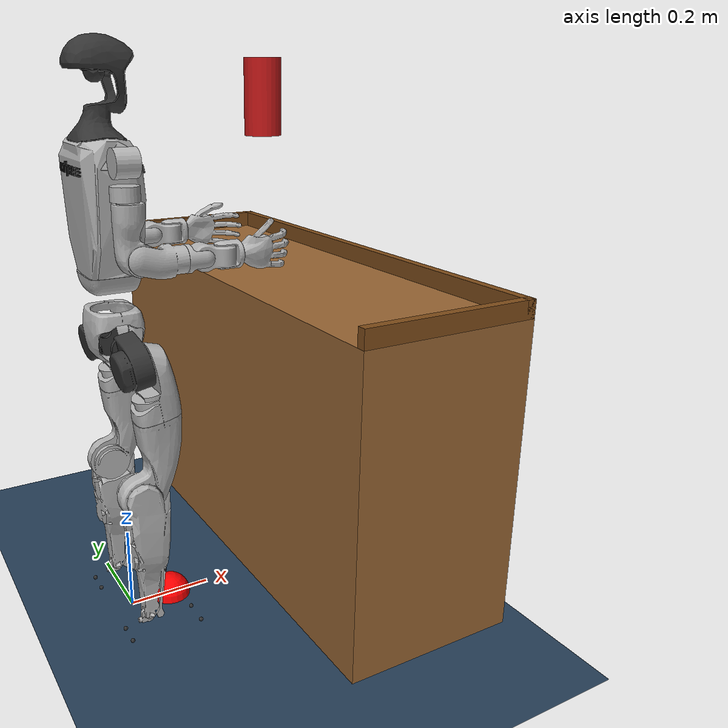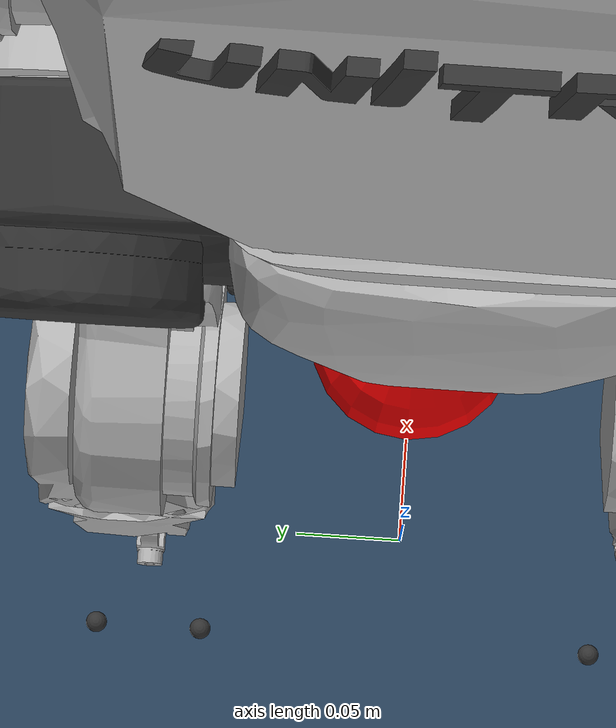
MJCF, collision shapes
<mujoco model="g1_29dof scene">
  <include file="g1_29dof_no_hand.xml"/>

  <statistic center="0 0 0.5" extent="2.0"/>

  <visual>
    <headlight diffuse="0.6 0.6 0.6" ambient="0.3 0.3 0.3" specular="0 0 0"/>
    <rgba haze="0.15 0.25 0.35 1"/>
    <global azimuth="-130" elevation="-20"/>
  </visual>

  <asset>
    <texture type="skybox" builtin="gradient" rgb1="0.3 0.5 0.7" rgb2="0 0 0" width="512" height="3072"/>
    <texture type="2d" name="groundplane" builtin="checker" mark="edge" rgb1="0.2 0.3 0.4" rgb2="0.1 0.2 0.3"
      markrgb="0.8 0.8 0.8" width="300" height="300"/>
    <material name="groundplane" texture="groundplane" texuniform="true" texrepeat="5 5" reflectance="0.2"/>
  </asset>

  <worldbody>
    <light pos="0 0 1.5" dir="0 0 -1" directional="true"/>
    <geom name="floor" size="0 0 0.05" type="plane" material="groundplane"/>
    <!-- Site -->
    <site name="com_marker" pos="0.1 0 0" size="0.05" rgba="1 0 0 1" type="sphere"/>
    <site name="left_hand_marker" pos="0.1 0 0" size="0.025" rgba="0 1 0 1" type="sphere"/>
    <site name="right_hand_marker" pos="0.1 0 0" size="0.025" rgba="0 1 0 1" type="sphere"/>
    <site name="left_foot_marker" pos="0.1 0 0" size="0.025" rgba="1 0 0 1" type="sphere"/>
    <site name="right_foot_marker" pos="0.1 0 0" size="0.025" rgba="1 0 0 1" type="sphere"/>
    <camera name="global_view" pos="2.910 -5.040 3.860" xyaxes="0.866 0.500 0.000 -0.250 0.433 0.866"/>

    <body name="mesa" pos="0.45 0 0.45">
      <geom name="geometria_mesa" type="box" size="0.2 0.6 0.35" rgba="0.6 0.4 0.2 1" friction="1 0.005 0.0001"/>
      <geom name="borda_fundo"    type="box" size="0.01 0.6 0.02" pos="0.19 0 0.37"   rgba="0.5 0.3 0.1 1" friction="1 0.005 0.0001"/>
      <geom name="borda_esquerda" type="box" size="0.2 0.01 0.02" pos="0 0.59 0.37"   rgba="0.5 0.3 0.1 1" friction="1 0.005 0.0001"/>
      <geom name="borda_direita"  type="box" size="0.2 0.01 0.02" pos="0 -0.59 0.37"  rgba="0.5 0.3 0.1 1" friction="1 0.005 0.0001"/>
    </body>

    <!-- COPO (Cilindro com fricção e contato otimizados) -->
    <body name="bloco" pos="0.35 -0.05 1.2">
      <freejoint name="junta_livre_bloco"/>
      <geom name="geometria_bloco" type="cylinder" size="0.04 0.08" rgba="0.8 0.1 0.1 1" mass="0.1"
            friction="1.5 0.005 0.0001"
            solref="0.02 1.0" solimp="0.9 0.95 0.001 0.5 2"/>
    </body>
  </worldbody>
</mujoco>

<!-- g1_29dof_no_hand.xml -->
<mujoco model="g1_29dof">
  <compiler angle="radian" meshdir="meshes" />

  <default>
    <default class="torso_motor">
      <joint damping="0.05" armature="0.01" frictionloss="0.2"/>
    </default>
    <default class="leg_motor">
      <joint damping="0.05" armature="0.01" frictionloss="0.2"/>
    </default>
    <default class="ankle_motor">
      <joint damping="0.05" armature="0.01" frictionloss="0.2"/>
    </default>
    <default class="arm_motor">
      <joint damping="0.05" armature="0.01" frictionloss="0.2"/>
    </default>
    <default class="wrist_motor">
      <joint damping="0.05" armature="0.01" frictionloss="0.1"/>
    </default>

  </default>

  <asset>
    <mesh name="pelvis" file="pelvis.STL" />
    <mesh name="pelvis_contour_link" file="pelvis_contour_link.STL" />
    <mesh name="left_hip_pitch_link" file="left_hip_pitch_link.STL" />
    <mesh name="left_hip_roll_link" file="left_hip_roll_link.STL" />
    <mesh name="left_hip_yaw_link" file="left_hip_yaw_link.STL" />
    <mesh name="left_knee_link" file="left_knee_link.STL" />
    <mesh name="left_ankle_pitch_link" file="left_ankle_pitch_link.STL" />
    <mesh name="left_ankle_roll_link" file="left_ankle_roll_link.STL" />
    <mesh name="right_hip_pitch_link" file="right_hip_pitch_link.STL" />
    <mesh name="right_hip_roll_link" file="right_hip_roll_link.STL" />
    <mesh name="right_hip_yaw_link" file="right_hip_yaw_link.STL" />
    <mesh name="right_knee_link" file="right_knee_link.STL" />
    <mesh name="right_ankle_pitch_link" file="right_ankle_pitch_link.STL" />
    <mesh name="right_ankle_roll_link" file="right_ankle_roll_link.STL" />
    <mesh name="waist_yaw_link" file="waist_yaw_link.STL" />
    <mesh name="waist_roll_link" file="waist_roll_link.STL" />
    <mesh name="torso_link" file="torso_link.STL" />
    <mesh name="logo_link" file="logo_link.STL" />
    <mesh name="head_link" file="head_link.STL" />
    <mesh name="waist_support_link" file="waist_support_link.STL" />
    <mesh name="left_shoulder_pitch_link" file="left_shoulder_pitch_link.STL" />
    <mesh name="left_shoulder_roll_link" file="left_shoulder_roll_link.STL" />
    <mesh name="left_shoulder_yaw_link" file="left_shoulder_yaw_link.STL" />
    <mesh name="left_elbow_link" file="left_elbow_link.STL" />
    <mesh name="left_wrist_roll_link" file="left_wrist_roll_link.STL" />
    <mesh name="left_wrist_pitch_link" file="left_wrist_pitch_link.STL" />
    <mesh name="left_wrist_yaw_link" file="left_wrist_yaw_link.STL" />
    <mesh name="left_rubber_hand" file="left_rubber_hand.STL" />
    <mesh name="right_shoulder_pitch_link" file="right_shoulder_pitch_link.STL" />
    <mesh name="right_shoulder_roll_link" file="right_shoulder_roll_link.STL" />
    <mesh name="right_shoulder_yaw_link" file="right_shoulder_yaw_link.STL" />
    <mesh name="right_elbow_link" file="right_elbow_link.STL" />
    <mesh name="right_wrist_roll_link" file="right_wrist_roll_link.STL" />
    <mesh name="right_wrist_pitch_link" file="right_wrist_pitch_link.STL" />
    <mesh name="right_wrist_yaw_link" file="right_wrist_yaw_link.STL" />
    <mesh name="right_rubber_hand" file="right_rubber_hand.STL" />
  </asset>

  <worldbody>
    <body name="pelvis" pos="0 0 0.793" quat="1 0 0 0">
      <inertial pos="0 0 -0.07605" quat="1 0 -0.000399148 0" mass="3.813"
        diaginertia="0.010549 0.0093089 0.0079184" />
      <joint name="floating_base_joint" type="free" limited="false" actuatorfrclimited="false" />
      <geom type="mesh" contype="0" conaffinity="0" group="1" density="0" rgba="0.2 0.2 0.2 1"
        mesh="pelvis" />
      <geom type="mesh" contype="0" conaffinity="0" group="1" density="0" rgba="0.7 0.7 0.7 1"
        mesh="pelvis_contour_link" />
      <geom type="mesh" rgba="0.7 0.7 0.7 1" mesh="pelvis_contour_link" />
      <body name="left_hip_pitch_link" pos="0 0.064452 -0.1027">
        <inertial pos="0.002741 0.047791 -0.02606" quat="0.954862 0.293964 0.0302556 0.030122"
          mass="1.35" diaginertia="0.00181517 0.00153422 0.00116212" />
        <joint name="left_hip_pitch_joint" pos="0 0 0" axis="0 1 0" range="-2.5307 2.8798"
          actuatorfrcrange="-88 88" class="leg_motor" />
        <geom type="mesh" contype="0" conaffinity="0" group="1" density="0" rgba="0.2 0.2 0.2 1"
          mesh="left_hip_pitch_link" />
        <geom type="mesh" rgba="0.2 0.2 0.2 1" mesh="left_hip_pitch_link" />
        <body name="left_hip_roll_link" pos="0 0.052 -0.030465" quat="0.996179 0 -0.0873386 0">
          <inertial pos="0.029812 -0.001045 -0.087934"
            quat="0.977808 -1.97119e-05 0.205576 -0.0403793" mass="1.52"
            diaginertia="0.00254986 0.00241169 0.00148755" />
          <joint name="left_hip_roll_joint" pos="0 0 0" axis="1 0 0" range="-0.5236 2.9671"
            actuatorfrcrange="-88 88" class="leg_motor" />
          <geom type="mesh" contype="0" conaffinity="0" group="1" density="0" rgba="0.7 0.7 0.7 1"
            mesh="left_hip_roll_link" />
          <geom type="mesh" rgba="0.7 0.7 0.7 1" mesh="left_hip_roll_link" />
          <body name="left_hip_yaw_link" pos="0.025001 0 -0.12412">
            <inertial pos="-0.057709 -0.010981 -0.15078" quat="0.600598 0.15832 0.223482 0.751181"
              mass="1.702" diaginertia="0.00776166 0.00717575 0.00160139" />
            <joint name="left_hip_yaw_joint" pos="0 0 0" axis="0 0 1" range="-2.7576 2.7576"
              actuatorfrcrange="-88 88" class="leg_motor" />
            <geom type="mesh" contype="0" conaffinity="0" group="1" density="0" rgba="0.7 0.7 0.7 1"
              mesh="left_hip_yaw_link" />
            <geom type="mesh" rgba="0.7 0.7 0.7 1" mesh="left_hip_yaw_link" />
            <body name="left_knee_link" pos="-0.078273 0.0021489 -0.17734"
              quat="0.996179 0 0.0873386 0">
              <inertial pos="0.005457 0.003964 -0.12074"
                quat="0.923418 -0.0327699 0.0158246 0.382067" mass="1.932"
                diaginertia="0.0113804 0.0112778 0.00146458" />
              <joint name="left_knee_joint" pos="0 0 0" axis="0 1 0" range="-0.087267 2.8798"
                actuatorfrcrange="-139 139" class="leg_motor" />
              <geom type="mesh" contype="0" conaffinity="0" group="1" density="0"
                rgba="0.7 0.7 0.7 1" mesh="left_knee_link" />
              <geom type="mesh" rgba="0.7 0.7 0.7 1" mesh="left_knee_link" />
              <body name="left_ankle_pitch_link" pos="0 -9.4445e-05 -0.30001">
                <inertial pos="-0.007269 0 0.011137" quat="0.603053 0.369225 0.369225 0.603053"
                  mass="0.074" diaginertia="1.89e-05 1.40805e-05 6.9195e-06" />
                <joint name="left_ankle_pitch_joint" pos="0 0 0" axis="0 1 0"
                  range="-0.87267 0.5236" actuatorfrcrange="-50 50"  class="ankle_motor"/>
                <geom type="mesh" contype="0" conaffinity="0" group="1" density="0"
                  rgba="0.7 0.7 0.7 1" mesh="left_ankle_pitch_link" />
                <geom type="mesh" rgba="0.7 0.7 0.7 1" mesh="left_ankle_pitch_link" />
                <body name="left_ankle_roll_link" pos="0 0 -0.017558">
                  <inertial pos="0.026505 0 -0.016425"
                    quat="-0.000481092 0.728482 -0.000618967 0.685065" mass="0.608"
                    diaginertia="0.00167218 0.0016161 0.000217621" />
                  <joint name="left_ankle_roll_joint" pos="0 0 0" axis="1 0 0"
                    range="-0.2618 0.2618" actuatorfrcrange="-50 50" class="ankle_motor"/>
                  <geom type="mesh" contype="0" conaffinity="0" group="1" density="0"
                    rgba="0.2 0.2 0.2 1" mesh="left_ankle_roll_link" />
                  <body name="dummy_lf_1" >
                      <inertial pos="0 0 0" mass="0.0001" diaginertia="0 0 0" />
                      <geom size="0.005" pos="-0.05 0.025 -0.03" rgba="0.2 0.2 0.2 1" />
                      <site name="left_foot_contact_1" pos="-0.05 0.025 -0.03" size="0.005" />
                  </body>
                  <body name="dummy_lf_2" >
                      <inertial pos="0 0 0" mass="0.0001" diaginertia="0 0 0" />
                      <geom size="0.005" pos="-0.05 -0.025 -0.03" rgba="0.2 0.2 0.2 1" />
                      <site name="left_foot_contact_2" pos="-0.05 -0.025 -0.03" size="0.005" />
                  </body>
                  <body name="dummy_lf_3" >
                      <inertial pos="0 0 0" mass="0.0001" diaginertia="0 0 0" />
                      <geom size="0.005" pos="0.12 0.03 -0.03" rgba="0.2 0.2 0.2 1" />
                      <site name="left_foot_contact_3" pos="0.12 0.03 -0.03" size="0.005" />
                  </body>
                  <body name="dummy_lf_4" >
                      <inertial pos="0 0 0" mass="0.0001" diaginertia="0 0 0" />
                      <geom size="0.005" pos="0.12 -0.03 -0.03" rgba="0.2 0.2 0.2 1" />
                      <site name="left_foot_contact_4" pos="0.12 -0.03 -0.03" size="0.005" />
                  </body>
                </body>
              </body>
            </body>
          </body>
        </body>
      </body>
      <body name="right_hip_pitch_link" pos="0 -0.064452 -0.1027">
        <inertial pos="0.002741 -0.047791 -0.02606" quat="0.954862 -0.293964 0.0302556 -0.030122"
          mass="1.35" diaginertia="0.00181517 0.00153422 0.00116212" />
        <joint name="right_hip_pitch_joint" pos="0 0 0" axis="0 1 0" range="-2.5307 2.8798"
          actuatorfrcrange="-88 88" class="leg_motor" />
        <geom type="mesh" contype="0" conaffinity="0" group="1" density="0" rgba="0.2 0.2 0.2 1"
          mesh="right_hip_pitch_link" />
        <geom type="mesh" rgba="0.2 0.2 0.2 1" mesh="right_hip_pitch_link" />
        <body name="right_hip_roll_link" pos="0 -0.052 -0.030465" quat="0.996179 0 -0.0873386 0">
          <inertial pos="0.029812 0.001045 -0.087934" quat="0.977808 1.97119e-05 0.205576 0.0403793"
            mass="1.52" diaginertia="0.00254986 0.00241169 0.00148755" />
          <joint name="right_hip_roll_joint" pos="0 0 0" axis="1 0 0" range="-2.9671 0.5236"
            actuatorfrcrange="-88 88" class="leg_motor" />
          <geom type="mesh" contype="0" conaffinity="0" group="1" density="0" rgba="0.7 0.7 0.7 1"
            mesh="right_hip_roll_link" />
          <geom type="mesh" rgba="0.7 0.7 0.7 1" mesh="right_hip_roll_link" />
          <body name="right_hip_yaw_link" pos="0.025001 0 -0.12412">
            <inertial pos="-0.057709 0.010981 -0.15078" quat="0.751181 0.223482 0.15832 0.600598"
              mass="1.702" diaginertia="0.00776166 0.00717575 0.00160139" />
            <joint name="right_hip_yaw_joint" pos="0 0 0" axis="0 0 1" range="-2.7576 2.7576"
              actuatorfrcrange="-88 88" class="leg_motor" />
            <geom type="mesh" contype="0" conaffinity="0" group="1" density="0" rgba="0.7 0.7 0.7 1"
              mesh="right_hip_yaw_link" />
            <geom type="mesh" rgba="0.7 0.7 0.7 1" mesh="right_hip_yaw_link" />
            <body name="right_knee_link" pos="-0.078273 -0.0021489 -0.17734"
              quat="0.996179 0 0.0873386 0">
              <inertial pos="0.005457 -0.003964 -0.12074"
                quat="0.923439 0.0345276 0.0116333 -0.382012" mass="1.932"
                diaginertia="0.011374 0.0112843 0.00146452" />
              <joint name="right_knee_joint" pos="0 0 0" axis="0 1 0" range="-0.087267 2.8798"
                actuatorfrcrange="-139 139" class="leg_motor" />
              <geom type="mesh" contype="0" conaffinity="0" group="1" density="0"
                rgba="0.7 0.7 0.7 1" mesh="right_knee_link" />
              <geom type="mesh" rgba="0.7 0.7 0.7 1" mesh="right_knee_link" />
              <body name="right_ankle_pitch_link" pos="0 9.4445e-05 -0.30001">
                <inertial pos="-0.007269 0 0.011137" quat="0.603053 0.369225 0.369225 0.603053"
                  mass="0.074" diaginertia="1.89e-05 1.40805e-05 6.9195e-06" />
                <joint name="right_ankle_pitch_joint" pos="0 0 0" axis="0 1 0"
                  range="-0.87267 0.5236" actuatorfrcrange="-50 50" class="ankle_motor" />
                <geom type="mesh" contype="0" conaffinity="0" group="1" density="0"
                  rgba="0.7 0.7 0.7 1" mesh="right_ankle_pitch_link" />
                <geom type="mesh" rgba="0.7 0.7 0.7 1" mesh="right_ankle_pitch_link" />
                <body name="right_ankle_roll_link" pos="0 0 -0.017558">
                  <inertial pos="0.026505 0 -0.016425"
                    quat="0.000481092 0.728482 0.000618967 0.685065" mass="0.608"
                    diaginertia="0.00167218 0.0016161 0.000217621" />
                  <joint name="right_ankle_roll_joint" pos="0 0 0" axis="1 0 0"
                    range="-0.2618 0.2618" actuatorfrcrange="-50 50" class="ankle_motor" />
                  <geom type="mesh" contype="0" conaffinity="0" group="1" density="0"
                    rgba="0.2 0.2 0.2 1" mesh="right_ankle_roll_link" />
                  <geom size="0.005" pos="-0.05 0.025 -0.03" rgba="0.2 0.2 0.2 1" />
                  <geom size="0.005" pos="-0.05 -0.025 -0.03" rgba="0.2 0.2 0.2 1" />
                  <geom size="0.005" pos="0.12 0.03 -0.03" rgba="0.2 0.2 0.2 1" />
                  <geom size="0.005" pos="0.12 -0.03 -0.03" rgba="0.2 0.2 0.2 1" />
                  <body name="dummy_rf_1" >
                      <inertial pos="0 0 0" mass="0.0001" diaginertia="0 0 0" />
                      <site name="right_foot_contact_1" pos="-0.05 0.025 -0.03" size="0.005" />
                  </body>
                  <body name="dummy_rf_2" >
                      <inertial pos="0 0 0" mass="0.0001" diaginertia="0 0 0" />
                      <site name="right_foot_contact_2" pos="-0.05 -0.025 -0.03" size="0.005" />
                  </body>
                  <body name="dummy_rf_3" >
                      <inertial pos="0 0 0" mass="0.0001" diaginertia="0 0 0" />
                      <site name="right_foot_contact_3" pos="0.12 0.03 -0.03" size="0.005" />
                  </body>
                  <body name="dummy_rf_4" >
                      <inertial pos="0 0 0" mass="0.0001" diaginertia="0 0 0" />
                      <site name="right_foot_contact_4" pos="0.12 -0.03 -0.03" size="0.005" />
                  </body>
                </body>
              </body>
            </body>
          </body>
        </body>
      </body>
      <body name="waist_yaw_link">
        <inertial pos="0.003964 0 0.018769" quat="-0.0178291 0.628464 0.0282471 0.777121"
          mass="0.244" diaginertia="0.000158561 0.000124229 9.67669e-05" />
        <joint name="waist_yaw_joint" pos="0 0 0" axis="0 0 1" range="-2.618 2.618"
          actuatorfrcrange="-88 88" class="torso_motor"/>
        <geom type="mesh" contype="0" conaffinity="0" group="1" density="0" rgba="0.7 0.7 0.7 1"
          mesh="waist_yaw_link" />
        <body name="waist_roll_link" pos="-0.0039635 0 0.035">
          <inertial pos="0 -0.000236 0.010111" quat="0.99979 0.020492 0 0" mass="0.047"
            diaginertia="7.515e-06 6.40206e-06 3.98394e-06" />
          <joint name="waist_roll_joint" pos="0 0 0" axis="1 0 0" range="-0.52 0.52"
            actuatorfrcrange="-50 50" class="torso_motor"/>
          <geom type="mesh" contype="0" conaffinity="0" group="1" density="0" rgba="0.7 0.7 0.7 1"
            mesh="waist_roll_link" />
          <body name="torso_link" pos="0 0 0.019">
            <camera name="head_camera" pos="0.06 0.0 0.45" euler="0 -0.8 -1.57"/>
            <inertial pos="0.00331658 0.000261533 0.179856"
              quat="0.999831 0.000376204 0.0179895 -0.00377704" mass="9.598"
              diaginertia="0.12407 0.111951 0.0325382" />
            <joint name="waist_pitch_joint" pos="0 0 0" axis="0 1 0" range="-0.52 0.52"
              actuatorfrcrange="-50 50" class="torso_motor"/>
            <geom type="mesh" contype="0" conaffinity="0" group="1" density="0" rgba="0.7 0.7 0.7 1"
              mesh="torso_link" />
            <geom type="mesh" rgba="0.7 0.7 0.7 1" mesh="torso_link" />
            <geom pos="0.0039635 0 -0.054" quat="1 0 0 0" type="mesh" contype="0" conaffinity="0"
              group="1" density="0" rgba="0.2 0.2 0.2 1" mesh="logo_link" />
            <geom pos="0.0039635 0 -0.054" quat="1 0 0 0" type="mesh" rgba="0.2 0.2 0.2 1"
              mesh="logo_link" />
            <geom pos="0.0039635 0 -0.054" type="mesh" contype="0" conaffinity="0" group="1"
              density="0" rgba="0.2 0.2 0.2 1" mesh="head_link" />
            <geom pos="0.0039635 0 -0.054" type="mesh" rgba="0.2 0.2 0.2 1" mesh="head_link" />
            <geom pos="0.0039635 0 -0.054" quat="1 0 0 0" type="mesh" contype="0" conaffinity="0"
              group="1" density="0" rgba="0.7 0.7 0.7 1" mesh="waist_support_link" />
            <geom pos="0.0039635 0 -0.054" quat="1 0 0 0" type="mesh" rgba="0.7 0.7 0.7 1"
              mesh="waist_support_link" />
            <site name="imu" size="0.01" pos="-0.03959 -0.00224 0.13792" />
            <body name="left_shoulder_pitch_link" pos="0.0039563 0.10022 0.23778"
              quat="0.990264 0.139201 1.38722e-05 -9.86868e-05">
              <inertial pos="0 0.035892 -0.011628" quat="0.654152 0.0130458 -0.326267 0.68225"
                mass="0.718" diaginertia="0.000465864 0.000432842 0.000406394" />
              <joint name="left_shoulder_pitch_joint" pos="0 0 0" axis="0 1 0"
                range="-3.0892 2.6704" actuatorfrcrange="-25 25" class="arm_motor" />
              <geom type="mesh" contype="0" conaffinity="0" group="1" density="0"
                rgba="0.7 0.7 0.7 1" mesh="left_shoulder_pitch_link" />
              <geom size="0.03 0.025" pos="0 0.04 -0.01" quat="0.707107 0 0.707107 0"
                type="cylinder" rgba="0.7 0.7 0.7 1" />
              <body name="left_shoulder_roll_link" pos="0 0.038 -0.013831"
                quat="0.990268 -0.139172 0 0">
                <inertial pos="-0.000227 0.00727 -0.063243"
                  quat="0.701256 -0.0196223 -0.00710317 0.712604" mass="0.643"
                  diaginertia="0.000691311 0.000618011 0.000388977" />
                <joint name="left_shoulder_roll_joint" pos="0 0 0" axis="1 0 0"
                  range="-1.5882 2.2515" actuatorfrcrange="-25 25" class="arm_motor" />
                <geom type="mesh" contype="0" conaffinity="0" group="1" density="0"
                  rgba="0.7 0.7 0.7 1" mesh="left_shoulder_roll_link" />
                <geom size="0.03 0.015" pos="-0.004 0.006 -0.053" type="cylinder"
                  rgba="0.7 0.7 0.7 1" />
                <body name="left_shoulder_yaw_link" pos="0 0.00624 -0.1032">
                  <inertial pos="0.010773 -0.002949 -0.072009"
                    quat="0.716879 -0.0964829 -0.0679942 0.687134" mass="0.734"
                    diaginertia="0.00106187 0.00103217 0.000400661" />
                  <joint name="left_shoulder_yaw_joint" pos="0 0 0" axis="0 0 1"
                    range="-2.618 2.618" actuatorfrcrange="-25 25" class="arm_motor" />
                  <geom type="mesh" contype="0" conaffinity="0" group="1" density="0"
                    rgba="0.7 0.7 0.7 1" mesh="left_shoulder_yaw_link" />
                  <geom type="mesh" rgba="0.7 0.7 0.7 1" mesh="left_shoulder_yaw_link" />
                  <body name="left_elbow_link" pos="0.015783 0 -0.080518">
                    <inertial pos="0.064956 0.004454 -0.010062"
                      quat="0.541765 0.636132 0.388821 0.388129" mass="0.6"
                      diaginertia="0.000443035 0.000421612 0.000259353" />
                    <joint name="left_elbow_joint" pos="0 0 0" axis="0 1 0" range="-1.0472 2.0944"
                      actuatorfrcrange="-25 25" class="arm_motor" />
                    <geom type="mesh" contype="0" conaffinity="0" group="1" density="0"
                      rgba="0.7 0.7 0.7 1" mesh="left_elbow_link" />
                    <geom type="mesh" rgba="0.7 0.7 0.7 1" mesh="left_elbow_link" />
                    <body name="left_wrist_roll_link" pos="0.1 0.00188791 -0.01">
                      <inertial pos="0.0171394 0.000537591 4.8864e-07"
                        quat="0.575338 0.411667 -0.574906 0.411094" mass="0.085445"
                        diaginertia="5.48211e-05 4.96646e-05 3.57798e-05" />
                      <joint name="left_wrist_roll_joint" pos="0 0 0" axis="1 0 0"
                        range="-1.97222 1.97222" actuatorfrcrange="-25 25" class="arm_motor" />
                      <geom type="mesh" contype="0" conaffinity="0" group="1" density="0"
                        rgba="0.7 0.7 0.7 1" mesh="left_wrist_roll_link" />
                      <geom type="mesh" rgba="0.7 0.7 0.7 1" mesh="left_wrist_roll_link" />
                      <body name="left_wrist_pitch_link" pos="0.038 0 0">
                        <inertial pos="0.0229999 -0.00111685 -0.00111658"
                          quat="0.249998 0.661363 0.293036 0.643608" mass="0.48405"
                          diaginertia="0.000430353 0.000429873 0.000164648" />
                        <joint name="left_wrist_pitch_joint" pos="0 0 0" axis="0 1 0"
                          range="-1.61443 1.61443" actuatorfrcrange="-5 5" class="wrist_motor" />
                        <geom type="mesh" contype="0" conaffinity="0" group="1" density="0"
                          rgba="0.7 0.7 0.7 1" mesh="left_wrist_pitch_link" />
                        <geom type="mesh" rgba="0.7 0.7 0.7 1" mesh="left_wrist_pitch_link" />
                        <body name="left_wrist_yaw_link" pos="0.046 0 0">
                          <inertial pos="0.0708244 0.000191745 0.00161742"
                            quat="0.510571 0.526295 0.468078 0.493188" mass="0.254576"
                            diaginertia="0.000646113 0.000559993 0.000147566" />
                          <joint name="left_wrist_yaw_joint" pos="0 0 0" axis="0 0 1"
                            range="-1.61443 1.61443" actuatorfrcrange="-5 5" class="wrist_motor" />
                          <geom type="mesh" contype="0" conaffinity="0" group="1" density="0"
                            rgba="0.7 0.7 0.7 1" mesh="left_wrist_yaw_link" />
                          <geom type="mesh" rgba="0.7 0.7 0.7 1" mesh="left_wrist_yaw_link" />
                          <body name="left_rubber_hand" >
                            <inertial pos="0.0001 0.0001 0.0001" mass="0.0001" diaginertia="0 0 0" />
                            <geom pos="0.0415 0.003 0" quat="1 0 0 0" type="mesh"  density="0" rgba="0.7 0.7 0.7 1"
                              mesh="left_rubber_hand" />
                          </body>
                        </body>
                      </body>
                    </body>
                  </body>
                </body>
              </body>
            </body>
            <body name="right_shoulder_pitch_link" pos="0.0039563 -0.10021 0.23778"
              quat="0.990264 -0.139201 1.38722e-05 9.86868e-05">
              <inertial pos="0 -0.035892 -0.011628" quat="0.68225 -0.326267 0.0130458 0.654152"
                mass="0.718" diaginertia="0.000465864 0.000432842 0.000406394" />
              <joint name="right_shoulder_pitch_joint" pos="0 0 0" axis="0 1 0"
                range="-3.0892 2.6704" actuatorfrcrange="-25 25" class="arm_motor" />
              <geom type="mesh" contype="0" conaffinity="0" group="1" density="0"
                rgba="0.7 0.7 0.7 1" mesh="right_shoulder_pitch_link" />
              <geom size="0.03 0.025" pos="0 -0.04 -0.01" quat="0.707107 0 0.707107 0"
                type="cylinder" rgba="0.7 0.7 0.7 1" />
              <body name="right_shoulder_roll_link" pos="0 -0.038 -0.013831"
                quat="0.990268 0.139172 0 0">
                <inertial pos="-0.000227 -0.00727 -0.063243"
                  quat="0.712604 -0.00710317 -0.0196223 0.701256" mass="0.643"
                  diaginertia="0.000691311 0.000618011 0.000388977" />
                <joint name="right_shoulder_roll_joint" pos="0 0 0" axis="1 0 0"
                  range="-2.2515 1.5882" actuatorfrcrange="-25 25" class="arm_motor" />
                <geom type="mesh" contype="0" conaffinity="0" group="1" density="0"
                  rgba="0.7 0.7 0.7 1" mesh="right_shoulder_roll_link" />
                <geom size="0.03 0.015" pos="-0.004 -0.006 -0.053" type="cylinder"
                  rgba="0.7 0.7 0.7 1" />
                <body name="right_shoulder_yaw_link" pos="0 -0.00624 -0.1032">
                  <inertial pos="0.010773 0.002949 -0.072009"
                    quat="0.687134 -0.0679942 -0.0964829 0.716879" mass="0.734"
                    diaginertia="0.00106187 0.00103217 0.000400661" />
                  <joint name="right_shoulder_yaw_joint" pos="0 0 0" axis="0 0 1"
                    range="-2.618 2.618" actuatorfrcrange="-25 25" class="arm_motor" />
                  <geom type="mesh" contype="0" conaffinity="0" group="1" density="0"
                    rgba="0.7 0.7 0.7 1" mesh="right_shoulder_yaw_link" />
                  <geom type="mesh" rgba="0.7 0.7 0.7 1" mesh="right_shoulder_yaw_link" />
                  <body name="right_elbow_link" pos="0.015783 0 -0.080518">
                    <inertial pos="0.064956 -0.004454 -0.010062"
                      quat="0.388129 0.388821 0.636132 0.541765" mass="0.6"
                      diaginertia="0.000443035 0.000421612 0.000259353" />
                    <joint name="right_elbow_joint" pos="0 0 0" axis="0 1 0" range="-1.0472 2.0944"
                      actuatorfrcrange="-25 25" class="arm_motor" />
                    <geom type="mesh" contype="0" conaffinity="0" group="1" density="0"
                      rgba="0.7 0.7 0.7 1" mesh="right_elbow_link" />
                    <geom type="mesh" rgba="0.7 0.7 0.7 1" mesh="right_elbow_link" />
                    <body name="right_wrist_roll_link" pos="0.1 -0.00188791 -0.01">
                      <inertial pos="0.0171394 -0.000537591 4.8864e-07"
                        quat="0.411667 0.575338 -0.411094 0.574906" mass="0.085445"
                        diaginertia="5.48211e-05 4.96646e-05 3.57798e-05" />
                      <joint name="right_wrist_roll_joint" pos="0 0 0" axis="1 0 0"
                        range="-1.97222 1.97222" actuatorfrcrange="-25 25" class="arm_motor" />
                      <geom type="mesh" contype="0" conaffinity="0" group="1" density="0"
                        rgba="0.7 0.7 0.7 1" mesh="right_wrist_roll_link" />
                      <geom type="mesh" rgba="0.7 0.7 0.7 1" mesh="right_wrist_roll_link" />
                      <body name="right_wrist_pitch_link" pos="0.038 0 0">
                        <inertial pos="0.0229999 0.00111685 -0.00111658"
                          quat="0.643608 0.293036 0.661363 0.249998" mass="0.48405"
                          diaginertia="0.000430353 0.000429873 0.000164648" />
                        <joint name="right_wrist_pitch_joint" pos="0 0 0" axis="0 1 0"
                          range="-1.61443 1.61443" actuatorfrcrange="-5 5" class="wrist_motor" />
                        <geom type="mesh" contype="0" conaffinity="0" group="1" density="0"
                          rgba="0.7 0.7 0.7 1" mesh="right_wrist_pitch_link" />
                        <geom type="mesh" rgba="0.7 0.7 0.7 1" mesh="right_wrist_pitch_link" />
                        <body name="right_wrist_yaw_link" pos="0.046 0 0">
                          <inertial pos="0.0708244 -0.000191745 0.00161742"
                            quat="0.493188 0.468078 0.526295 0.510571" mass="0.254576"
                            diaginertia="0.000646113 0.000559993 0.000147566" />
                          <joint name="right_wrist_yaw_joint" pos="0 0 0" axis="0 0 1"
                            range="-1.61443 1.61443" actuatorfrcrange="-5 5" class="wrist_motor" />
                          <geom type="mesh" contype="0" conaffinity="0" group="1" density="0"
                            rgba="0.7 0.7 0.7 1" mesh="right_wrist_yaw_link" />
                          <geom type="mesh" rgba="0.7 0.7 0.7 1" mesh="right_wrist_yaw_link" />
                          <body name="right_rubber_hand" >
                            <inertial pos="0.0001 0.0001 0.0001" mass="0.0001" diaginertia="0 0 0" />
                            <geom pos="0.0415 -0.003 0" quat="1 0 0 0" type="mesh" density="0" rgba="0.7 0.7 0.7 1"
                              mesh="right_rubber_hand"
                              friction="2.0 0.01 0.0001"
                              solref="0.01 1.0" solimp="0.95 0.99 0.001 0.5 2"/>
                          </body>
                        </body>
                      </body>
                    </body>
                  </body>
                </body>
              </body>
            </body>
          </body>
        </body>
      </body>
    </body>
  </worldbody>

  <actuator>
    <motor name="left_hip_pitch" joint="left_hip_pitch_joint" ctrlrange="-88 88" />
    <motor name="left_hip_roll" joint="left_hip_roll_joint" ctrlrange="-88 88" />
    <motor name="left_hip_yaw" joint="left_hip_yaw_joint" ctrlrange="-88 88" />
    <motor name="left_knee" joint="left_knee_joint" ctrlrange="-139 139" />
    <motor name="left_ankle_pitch" joint="left_ankle_pitch_joint" ctrlrange="-50 50" />
    <motor name="left_ankle_roll" joint="left_ankle_roll_joint" ctrlrange="-50 50" />

    <motor name="right_hip_pitch" joint="right_hip_pitch_joint" ctrlrange="-88 88" />
    <motor name="right_hip_roll" joint="right_hip_roll_joint" ctrlrange="-88 88" />
    <motor name="right_hip_yaw" joint="right_hip_yaw_joint" ctrlrange="-88 88" />
    <motor name="right_knee" joint="right_knee_joint" ctrlrange="-139 139" />
    <motor name="right_ankle_pitch" joint="right_ankle_pitch_joint" ctrlrange="-50 50" />
    <motor name="right_ankle_roll" joint="right_ankle_roll_joint" ctrlrange="-50 50" />

    <motor name="waist_yaw" joint="waist_yaw_joint" ctrlrange="-88 88" />
    <motor name="waist_roll" joint="waist_roll_joint" ctrlrange="-50 50" />
    <motor name="waist_pitch" joint="waist_pitch_joint" ctrlrange="-50 50" />

    <motor name="left_shoulder_pitch" joint="left_shoulder_pitch_joint" ctrlrange="-25 25" />
    <motor name="left_shoulder_roll" joint="left_shoulder_roll_joint" ctrlrange="-25 25" />
    <motor name="left_shoulder_yaw" joint="left_shoulder_yaw_joint" ctrlrange="-25 25" />
    <motor name="left_elbow" joint="left_elbow_joint" ctrlrange="-25 25" />
    <motor name="left_wrist_roll" joint="left_wrist_roll_joint" ctrlrange="-25 25" />
    <motor name="left_wrist_pitch" joint="left_wrist_pitch_joint" ctrlrange="-5 5" />
    <motor name="left_wrist_yaw" joint="left_wrist_yaw_joint" ctrlrange="-5 5" />

    <motor name="right_shoulder_pitch" joint="right_shoulder_pitch_joint" ctrlrange="-25 25" />
    <motor name="right_shoulder_roll" joint="right_shoulder_roll_joint" ctrlrange="-25 25" />
    <motor name="right_shoulder_yaw" joint="right_shoulder_yaw_joint" ctrlrange="-25 25" />
    <motor name="right_elbow" joint="right_elbow_joint" ctrlrange="-25 25" />
    <motor name="right_wrist_roll" joint="right_wrist_roll_joint" ctrlrange="-25 25" />
    <motor name="right_wrist_pitch" joint="right_wrist_pitch_joint" ctrlrange="-5 5" />
    <motor name="right_wrist_yaw" joint="right_wrist_yaw_joint" ctrlrange="-5 5" />
  </actuator>

  <sensor>
    <jointpos name="left_hip_pitch_pos" joint="left_hip_pitch_joint" />
    <jointpos name="left_hip_roll_pos" joint="left_hip_roll_joint" />
    <jointpos name="left_hip_yaw_pos" joint="left_hip_yaw_joint" />
    <jointpos name="left_knee_pos" joint="left_knee_joint" />
    <jointpos name="left_ankle_pitch_pos" joint="left_ankle_pitch_joint" />
    <jointpos name="left_ankle_roll_pos" joint="left_ankle_roll_joint" />
    <jointpos name="right_hip_pitch_pos" joint="right_hip_pitch_joint" />
    <jointpos name="right_hip_roll_pos" joint="right_hip_roll_joint" />
    <jointpos name="right_hip_yaw_pos" joint="right_hip_yaw_joint" />
    <jointpos name="right_knee_pos" joint="right_knee_joint" />
    <jointpos name="right_ankle_pitch_pos" joint="right_ankle_pitch_joint" />
    <jointpos name="right_ankle_roll_pos" joint="right_ankle_roll_joint" />
    <jointpos name="waist_yaw_pos" joint="waist_yaw_joint" />
    <jointpos name="waist_roll_pos" joint="waist_roll_joint" />
    <jointpos name="waist_pitch_pos" joint="waist_pitch_joint" />
    <jointpos name="left_shoulder_pitch_pos" joint="left_shoulder_pitch_joint" />
    <jointpos name="left_shoulder_roll_pos" joint="left_shoulder_roll_joint" />
    <jointpos name="left_shoulder_yaw_pos" joint="left_shoulder_yaw_joint" />
    <jointpos name="left_elbow_pos" joint="left_elbow_joint" />
    <jointpos name="left_wrist_roll_pos" joint="left_wrist_roll_joint" />
    <jointpos name="left_wrist_pitch_pos" joint="left_wrist_pitch_joint" />
    <jointpos name="left_wrist_yaw_pos" joint="left_wrist_yaw_joint" />
    <jointpos name="right_shoulder_pitch_pos" joint="right_shoulder_pitch_joint" />
    <jointpos name="right_shoulder_roll_pos" joint="right_shoulder_roll_joint" />
    <jointpos name="right_shoulder_yaw_pos" joint="right_shoulder_yaw_joint" />
    <jointpos name="right_elbow_pos" joint="right_elbow_joint" />
    <jointpos name="right_wrist_roll_pos" joint="right_wrist_roll_joint" />
    <jointpos name="right_wrist_pitch_pos" joint="right_wrist_pitch_joint" />
    <jointpos name="right_wrist_yaw_pos" joint="right_wrist_yaw_joint" />

    <jointvel name="left_hip_pitch_vel" joint="left_hip_pitch_joint" />
    <jointvel name="left_hip_roll_vel" joint="left_hip_roll_joint" />
    <jointvel name="left_hip_yaw_vel" joint="left_hip_yaw_joint" />
    <jointvel name="left_knee_vel" joint="left_knee_joint" />
    <jointvel name="left_ankle_pitch_vel" joint="left_ankle_pitch_joint" />
    <jointvel name="left_ankle_roll_vel" joint="left_ankle_roll_joint" />
    <jointvel name="right_hip_pitch_vel" joint="right_hip_pitch_joint" />
    <jointvel name="right_hip_roll_vel" joint="right_hip_roll_joint" />
    <jointvel name="right_hip_yaw_vel" joint="right_hip_yaw_joint" />
    <jointvel name="right_knee_vel" joint="right_knee_joint" />
    <jointvel name="right_ankle_pitch_vel" joint="right_ankle_pitch_joint" />
    <jointvel name="right_ankle_roll_vel" joint="right_ankle_roll_joint" />
    <jointvel name="waist_yaw_vel" joint="waist_yaw_joint" />
    <jointvel name="waist_roll_vel" joint="waist_roll_joint" />
    <jointvel name="waist_pitch_vel" joint="waist_pitch_joint" />
    <jointvel name="left_shoulder_pitch_vel" joint="left_shoulder_pitch_joint" />
    <jointvel name="left_shoulder_roll_vel" joint="left_shoulder_roll_joint" />
    <jointvel name="left_shoulder_yaw_vel" joint="left_shoulder_yaw_joint" />
    <jointvel name="left_elbow_vel" joint="left_elbow_joint" />
    <jointvel name="left_wrist_roll_vel" joint="left_wrist_roll_joint" />
    <jointvel name="left_wrist_pitch_vel" joint="left_wrist_pitch_joint" />
    <jointvel name="left_wrist_yaw_vel" joint="left_wrist_yaw_joint" />
    <jointvel name="right_shoulder_pitch_vel" joint="right_shoulder_pitch_joint" />
    <jointvel name="right_shoulder_roll_vel" joint="right_shoulder_roll_joint" />
    <jointvel name="right_shoulder_yaw_vel" joint="right_shoulder_yaw_joint" />
    <jointvel name="right_elbow_vel" joint="right_elbow_joint" />
    <jointvel name="right_wrist_roll_vel" joint="right_wrist_roll_joint" />
    <jointvel name="right_wrist_pitch_vel" joint="right_wrist_pitch_joint" />
    <jointvel name="right_wrist_yaw_vel" joint="right_wrist_yaw_joint" />

    <jointactuatorfrc name="left_hip_pitch_torque" joint="left_hip_pitch_joint" />
    <jointactuatorfrc name="left_hip_roll_torque" joint="left_hip_roll_joint" />
    <jointactuatorfrc name="left_hip_yaw_torque" joint="left_hip_yaw_joint" />
    <jointactuatorfrc name="left_knee_torque" joint="left_knee_joint" />
    <jointactuatorfrc name="left_ankle_pitch_torque" joint="left_ankle_pitch_joint" />
    <jointactuatorfrc name="left_ankle_roll_torque" joint="left_ankle_roll_joint" />
    <jointactuatorfrc name="right_hip_pitch_torque" joint="right_hip_pitch_joint" />
    <jointactuatorfrc name="right_hip_roll_torque" joint="right_hip_roll_joint" />
    <jointactuatorfrc name="right_hip_yaw_torque" joint="right_hip_yaw_joint" />
    <jointactuatorfrc name="right_knee_torque" joint="right_knee_joint" />
    <jointactuatorfrc name="right_ankle_pitch_torque" joint="right_ankle_pitch_joint" />
    <jointactuatorfrc name="right_ankle_roll_torque" joint="right_ankle_roll_joint" />
    <jointactuatorfrc name="waist_yaw_torque" joint="waist_yaw_joint" />
    <jointactuatorfrc name="waist_roll_torque" joint="waist_roll_joint" />
    <jointactuatorfrc name="waist_pitch_torque" joint="waist_pitch_joint" />
    <jointactuatorfrc name="left_shoulder_pitch_torque" joint="left_shoulder_pitch_joint" />
    <jointactuatorfrc name="left_shoulder_roll_torque" joint="left_shoulder_roll_joint" />
    <jointactuatorfrc name="left_shoulder_yaw_torque" joint="left_shoulder_yaw_joint" />
    <jointactuatorfrc name="left_elbow_torque" joint="left_elbow_joint" />
    <jointactuatorfrc name="left_wrist_roll_torque" joint="left_wrist_roll_joint" />
    <jointactuatorfrc name="left_wrist_pitch_torque" joint="left_wrist_pitch_joint" />
    <jointactuatorfrc name="left_wrist_yaw_torque" joint="left_wrist_yaw_joint" />
    <jointactuatorfrc name="right_shoulder_pitch_torque" joint="right_shoulder_pitch_joint" />
    <jointactuatorfrc name="right_shoulder_roll_torque" joint="right_shoulder_roll_joint" />
    <jointactuatorfrc name="right_shoulder_yaw_torque" joint="right_shoulder_yaw_joint" />
    <jointactuatorfrc name="right_elbow_torque" joint="right_elbow_joint" />
    <jointactuatorfrc name="right_wrist_roll_torque" joint="right_wrist_roll_joint" />
    <jointactuatorfrc name="right_wrist_pitch_torque" joint="right_wrist_pitch_joint" />
    <jointactuatorfrc name="right_wrist_yaw_torque" joint="right_wrist_yaw_joint" />

    <framequat name="imu_quat" objtype="site" objname="imu" />
    <gyro name="imu_gyro" site="imu" />
    <accelerometer name="imu_acc" site="imu" />

    <framepos name="frame_pos" objtype="site" objname="imu" />
    <framelinvel name="frame_vel" objtype="site" objname="imu" />
  </sensor>
  <sensor>
      <force site="left_foot_contact_1" />
      <force site="left_foot_contact_2" />
      <force site="left_foot_contact_3" />
      <force site="left_foot_contact_4" />
      <force site="right_foot_contact_1" />
      <force site="right_foot_contact_2" />
      <force site="right_foot_contact_3" />
      <force site="right_foot_contact_4" />
  </sensor>

</mujoco>
